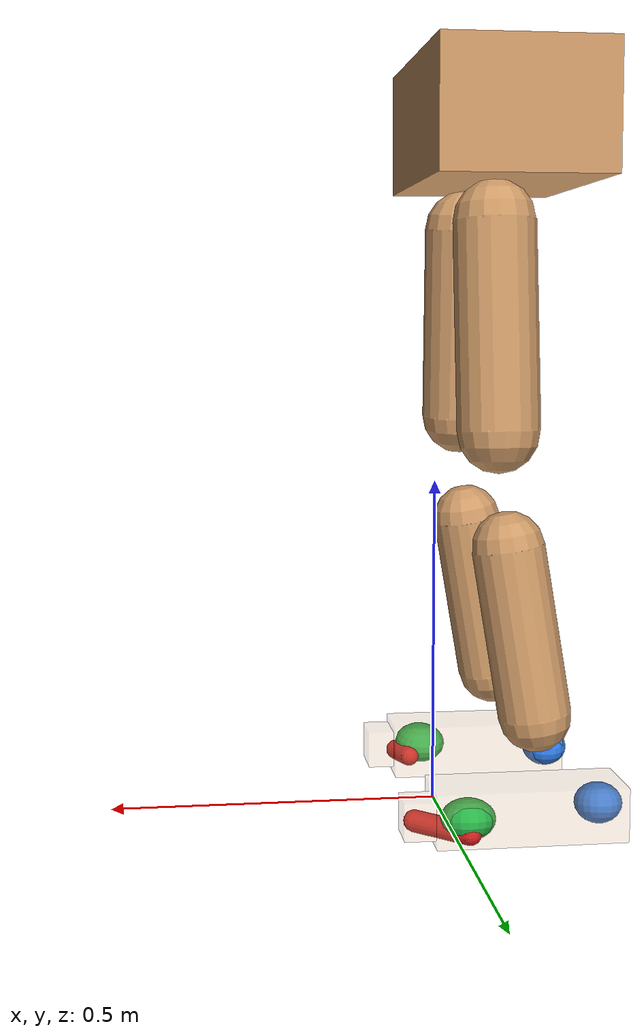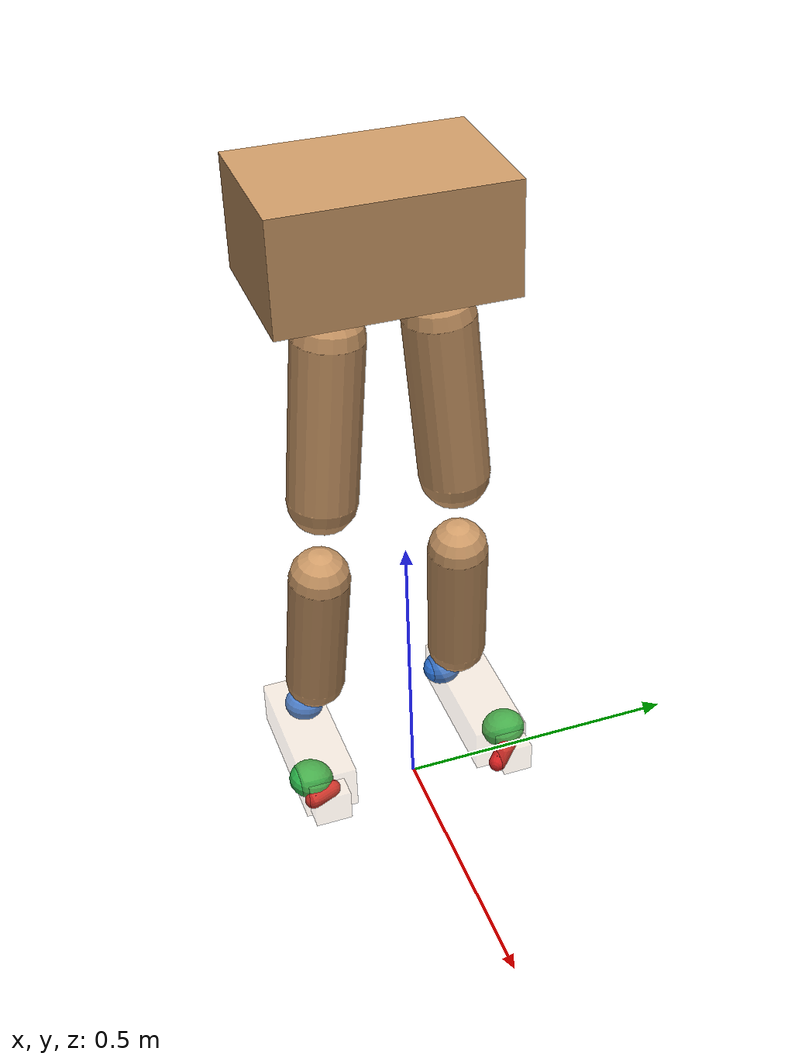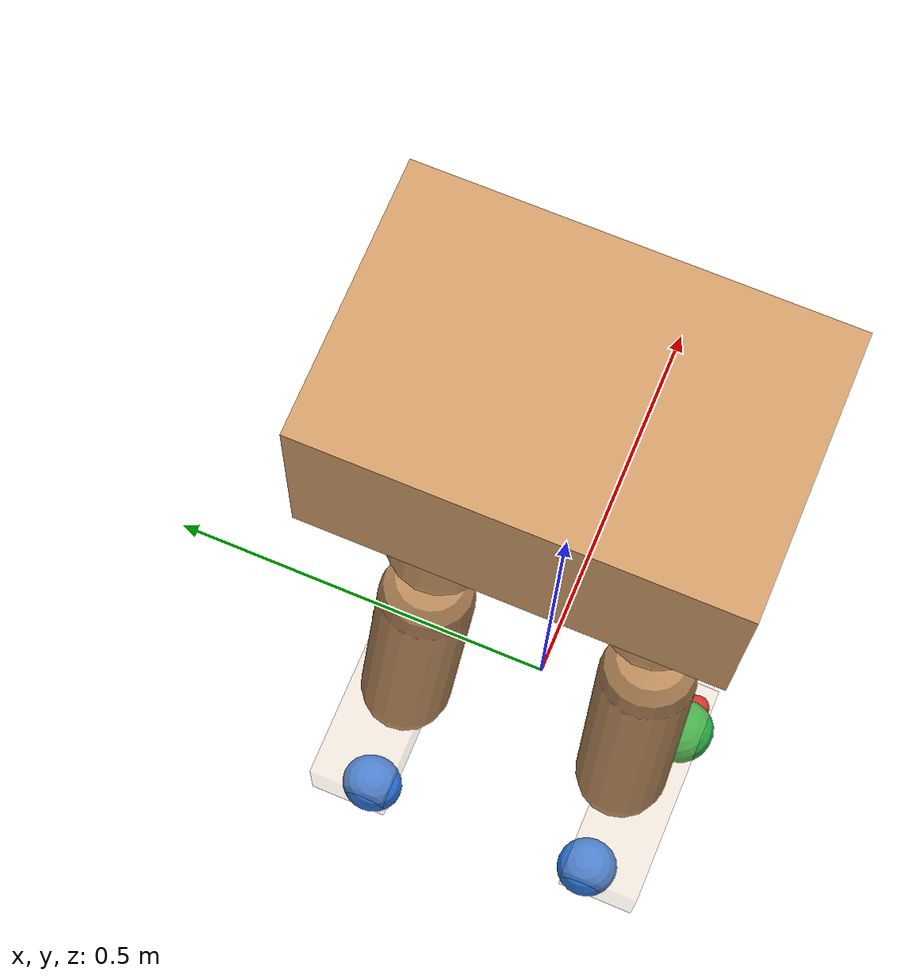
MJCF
<mujoco model="smpl_lower_humanoid_elipsoid_foot_contact_calibrated">
  <compiler angle="radian" coordinate="local" />
  <option timestep="0.001" integrator="implicitfast" solver="Newton" cone="elliptic" impratio="10" iterations="80" tolerance="1e-10" noslip_iterations="2">
    <flag nativeccd="enable" multiccd="enable" />
  </option>
  <default>
    <joint damping="0.12" armature="0.0005" />
    <geom solref="0.012 1" solimp="0.90 0.98 0.0015 0.5 2" margin="0.0005" />
    <default class="elipsoid_foot_contact">
      <geom type="ellipsoid" density="0" condim="6" contype="1" conaffinity="2" friction="1.0 0.03 0.002" rgba="0.10 0.45 0.85 0.88" />
    </default>
    <default class="elipsoid_touch_site">
      <site type="box" group="3" rgba="0.9 0.2 0.1 0.18" />
    </default>
  </default>
  <asset>
    <texture type="skybox" builtin="gradient" rgb1=".4 .5 .6" rgb2="0 0 0" width="100" height="100" />
    <texture builtin="flat" height="1278" mark="cross" markrgb="1 1 1" name="texgeom" random="0.01" rgb1="0.8 0.6 0.4" rgb2="0.8 0.6 0.4" type="cube" width="127" />
    <texture builtin="checker" height="100" name="texplane" rgb1="0 0 0" rgb2="0.8 0.8 0.8" type="2d" width="100" />
    <material name="MatPlane" reflectance="0.5" shininess="1" specular="1" texrepeat="60 60" texture="texplane" />
    <material name="geom" texture="texgeom" texuniform="true" />
  </asset>
  <worldbody>
    <light cutoff="100" diffuse="1 1 1" dir="-0 0 -1.3" directional="true" exponent="1" pos="0 0 1.3" specular=".1 .1 .1" />
    <body name="Pelvis" pos="0.00000 0.00000 1.04061">
      <geom type="box" pos="-0.09544 -0.00421 0.00624" size="0.12975 0.19747 0.09547" quat="1.0000 0.0000 0.0000 0.0000" density="1000" conaffinity="1" condim="3" contype="7" margin="0.001" rgba="0.8 0.6 .4 1" />
      <body name="L_Hip" pos="-0.06744 0.08281 -0.05030">
        <joint name="L_Hip_x" type="hinge" pos="0 0 0" axis="1 0 0" stiffness="800" damping="80" armature="0.02" range="-180.0000 180.0000" limited="true" />
        <joint name="L_Hip_y" type="hinge" pos="0 0 0" axis="0 1 0" stiffness="800" damping="80" armature="0.02" range="-180.0000 180.0000" limited="true" />
        <joint name="L_Hip_z" type="hinge" pos="0 0 0" axis="0 0 1" stiffness="800" damping="80" armature="0.02" range="-180.0000 180.0000" limited="true" />
        <geom type="capsule" contype="1" conaffinity="1" density="2040.816327" fromto="-0.00119 0.00763 -0.09899 -0.00487 0.03129 -0.40587" size="0.0615" condim="3" margin="0.001" rgba="0.8 0.6 .4 1" />
        <body name="L_Knee" pos="-0.00593 0.03816 -0.49497">
          <joint name="L_Knee_x" type="hinge" pos="0 0 0" axis="1 0 0" stiffness="800" damping="80" armature="0.02" range="-180.0000 180.0000" limited="true" />
          <joint name="L_Knee_y" type="hinge" pos="0 0 0" axis="0 1 0" stiffness="800" damping="80" armature="0.02" range="-180.0000 180.0000" limited="true" />
          <joint name="L_Knee_z" type="hinge" pos="0 0 0" axis="0 0 1" stiffness="800" damping="80" armature="0.02" range="-180.0000 180.0000" limited="true" />
          <geom type="capsule" contype="1" conaffinity="1" density="1234.567901" fromto="-0.01302 0.00290 -0.08045 -0.05338 0.01189 -0.32986" size="0.0541" condim="3" margin="0.001" rgba="0.8 0.6 .4 1" />
          <body name="L_Ankle" pos="-0.06509 0.01450 -0.40227">
            <joint name="L_Ankle_x" type="hinge" pos="0 0 0" axis="1 0 0" stiffness="800" damping="80" armature="0.02" range="-180.0000 180.0000" limited="true" />
            <joint name="L_Ankle_y" type="hinge" pos="0 0 0" axis="0 1 0" stiffness="800" damping="80" armature="0.02" range="-180.0000 180.0000" limited="true" />
            <joint name="L_Ankle_z" type="hinge" pos="0 0 0" axis="0 0 1" stiffness="800" damping="80" armature="0.02" range="-180.0000 180.0000" limited="true" />
            <geom name="L_foot_inertial_visual" type="box" pos="0.03050 0.02543 -0.05936" size="0.14119 0.04827 0.03983" quat="1.0000 0.0000 0.0000 0.0000" density="1000" conaffinity="0" condim="3" contype="0" margin="0.001" rgba="0.8 0.6 .4 0.18" />
            <body name="L_elipsoid_foot_segment" pos="0.00000 0.00000 0.00000">
              <inertial pos="0.00000 -0.01000 0.02800" mass="0.55" diaginertia="0.0012 0.0026 0.0021" />
              <geom name="L_heel_ellipsoid" class="elipsoid_foot_contact" pos="-0.08568 0.00216 -0.06307" quat="0.70512 0.05298 0.05298 -0.70512" size="0.0375 0.0355 0.0300" rgba="0.18 0.48 0.90 0.90" />
              <geom name="L_ball_ellipsoid" class="elipsoid_foot_contact" pos="0.12211 0.04870 -0.06307" quat="0.85577 0.08586 0.05093 -0.50763" size="0.0400 0.0410 0.0300" rgba="0.16 0.70 0.28 0.90" />
              <site name="L_heel_touch" class="elipsoid_touch_site" pos="-0.08568 0.00216 -0.08907" size="0.0563 0.0461 0.0040" />
              <site name="L_ball_touch" class="elipsoid_touch_site" pos="0.12211 0.04870 -0.08907" size="0.0560 0.0644 0.0040" />
              <body name="L_elipsoid_toe_segment" pos="0.12211 0.04870 -0.06919">
                <joint name="L_toe_hinge" type="hinge" axis="0 -1 0" range="-0.8 0.7" limited="true" damping="0.18" armature="0.0004" />
                <inertial pos="0.05000 0.00000 0.00200" mass="0.12" diaginertia="0.00018 0.00045 0.00038" />
                <geom name="L_toe_capsule" class="elipsoid_foot_contact" type="capsule" fromto="0.00094 0.02361 -0.00788 0.07157 -0.03918 -0.00788" size="0.0160" rgba="0.82 0.12 0.12 0.90" />
                <site name="L_toe_touch" class="elipsoid_touch_site" pos="0.03561 -0.00764 -0.01988" size="0.0350 0.0350 0.0040" />
              </body>
            </body>
            <body name="L_Toe" pos="0.12211 0.04870 -0.06919">
              <joint name="L_Toe_x" type="hinge" pos="0 0 0" axis="1 0 0" stiffness="500" damping="50" armature="0.02" range="-180.0000 180.0000" limited="true" />
              <joint name="L_Toe_y" type="hinge" pos="0 0 0" axis="0 1 0" stiffness="500" damping="50" armature="0.02" range="-180.0000 180.0000" limited="true" />
              <joint name="L_Toe_z" type="hinge" pos="0 0 0" axis="0 0 1" stiffness="500" damping="50" armature="0.02" range="-180.0000 180.0000" limited="true" />
              <geom name="L_toe_inertial_visual" type="box" pos="0.04031 -0.00865 0.00958" size="0.05531 0.02665 0.02758" quat="1.0000 0.0000 0.0000 0.0000" density="1000" conaffinity="0" condim="3" contype="0" margin="0.001" rgba="0.8 0.6 .4 0.12" />
            </body>
          </body>
        </body>
      </body>
      <body name="R_Hip" pos="-0.06123 -0.08511 -0.05424">
        <joint name="R_Hip_x" type="hinge" pos="0 0 0" axis="1 0 0" stiffness="800" damping="80" armature="0.02" range="-180.0000 180.0000" limited="true" />
        <joint name="R_Hip_y" type="hinge" pos="0 0 0" axis="0 1 0" stiffness="800" damping="80" armature="0.02" range="-180.0000 180.0000" limited="true" />
        <joint name="R_Hip_z" type="hinge" pos="0 0 0" axis="0 0 1" stiffness="800" damping="80" armature="0.02" range="-180.0000 180.0000" limited="true" />
        <geom type="capsule" contype="1" conaffinity="1" density="2040.816327" fromto="-0.00068 -0.00850 -0.09596 -0.00281 -0.03485 -0.39342" size="0.0606" condim="3" margin="0.001" rgba="0.8 0.6 .4 1" />
        <body name="R_Knee" pos="-0.00342 -0.04250 -0.47978">
          <joint name="R_Knee_x" type="hinge" pos="0 0 0" axis="1 0 0" stiffness="800" damping="80" armature="0.02" range="-180.0000 180.0000" limited="true" />
          <joint name="R_Knee_y" type="hinge" pos="0 0 0" axis="0 1 0" stiffness="800" damping="80" armature="0.02" range="-180.0000 180.0000" limited="true" />
          <joint name="R_Knee_z" type="hinge" pos="0 0 0" axis="0 0 1" stiffness="800" damping="80" armature="0.02" range="-180.0000 180.0000" limited="true" />
          <geom type="capsule" contype="1" conaffinity="1" density="1234.567901" fromto="-0.01482 -0.00343 -0.08303 -0.06076 -0.01406 -0.34043" size="0.0541" condim="3" margin="0.001" rgba="0.8 0.6 .4 1" />
          <body name="R_Ankle" pos="-0.07409 -0.01714 -0.41516">
            <joint name="R_Ankle_x" type="hinge" pos="0 0 0" axis="1 0 0" stiffness="800" damping="80" armature="0.02" range="-180.0000 180.0000" limited="true" />
            <joint name="R_Ankle_y" type="hinge" pos="0 0 0" axis="0 1 0" stiffness="800" damping="80" armature="0.02" range="-180.0000 180.0000" limited="true" />
            <joint name="R_Ankle_z" type="hinge" pos="0 0 0" axis="0 0 1" stiffness="800" damping="80" armature="0.02" range="-180.0000 180.0000" limited="true" />
            <geom name="R_foot_inertial_visual" type="box" pos="0.03642 -0.02333 -0.05833" size="0.14117 0.04772 0.04090" quat="1.0000 0.0000 0.0000 0.0000" density="1000" conaffinity="0" condim="3" contype="0" margin="0.001" rgba="0.8 0.6 .4 0.18" />
            <body name="R_elipsoid_foot_segment" pos="0.00000 0.00000 0.00000">
              <inertial pos="0.00000 0.01000 0.02800" mass="0.55" diaginertia="0.0012 0.0026 0.0021" />
              <geom name="R_heel_ellipsoid" class="elipsoid_foot_contact" pos="-0.07975 -0.00061 -0.06143" quat="0.70512 -0.05298 0.05298 0.70512" size="0.0370 0.0365 0.0300" rgba="0.18 0.48 0.90 0.90" />
              <geom name="R_ball_ellipsoid" class="elipsoid_foot_contact" pos="0.12492 -0.04604 -0.06143" quat="0.85577 -0.08586 0.05093 0.50763" size="0.0400 0.0414 0.0300" rgba="0.16 0.70 0.28 0.90" />
              <site name="R_heel_touch" class="elipsoid_touch_site" pos="-0.07975 -0.00061 -0.08743" size="0.0555 0.0475 0.0040" />
              <site name="R_ball_touch" class="elipsoid_touch_site" pos="0.12492 -0.04604 -0.08743" size="0.0560 0.0650 0.0040" />
              <body name="R_elipsoid_toe_segment" pos="0.12492 -0.04604 -0.06923">
                <joint name="R_toe_hinge" type="hinge" axis="0 1 0" range="-0.8 0.7" limited="true" damping="0.18" armature="0.0004" />
                <inertial pos="0.05000 0.00000 0.00200" mass="0.12" diaginertia="0.00018 0.00045 0.00038" />
                <geom name="R_toe_capsule" class="elipsoid_foot_contact" type="capsule" fromto="0.02319 0.03089 -0.00620 0.03981 -0.00755 -0.00620" size="0.0160" rgba="0.82 0.12 0.12 0.90" />
                <site name="R_toe_touch" class="elipsoid_touch_site" pos="0.03094 0.01146 -0.01820" size="0.0350 0.0350 0.0040" />
              </body>
            </body>
            <body name="R_Toe" pos="0.12492 -0.04604 -0.06923">
              <joint name="R_Toe_x" type="hinge" pos="0 0 0" axis="1 0 0" stiffness="500" damping="50" armature="0.02" range="-180.0000 180.0000" limited="true" />
              <joint name="R_Toe_y" type="hinge" pos="0 0 0" axis="0 1 0" stiffness="500" damping="50" armature="0.02" range="-180.0000 180.0000" limited="true" />
              <joint name="R_Toe_z" type="hinge" pos="0 0 0" axis="0 0 1" stiffness="500" damping="50" armature="0.02" range="-180.0000 180.0000" limited="true" />
              <geom name="R_toe_inertial_visual" type="box" pos="0.03937 0.01458 0.01090" size="0.05437 0.03258 0.02890" quat="1.0000 0.0000 0.0000 0.0000" density="1000" conaffinity="0" condim="3" contype="0" margin="0.001" rgba="0.8 0.6 .4 0.12" />
            </body>
          </body>
        </body>
      </body>
      <joint type="free" name="Pelvis" limited="false" actuatorfrclimited="false" />
    </body>
  </worldbody>
  <actuator>
    <motor name="L_Hip_x" joint="L_Hip_x" gear="500" />
    <motor name="L_Hip_y" joint="L_Hip_y" gear="500" />
    <motor name="L_Hip_z" joint="L_Hip_z" gear="500" />
    <motor name="L_Knee_x" joint="L_Knee_x" gear="500" />
    <motor name="L_Knee_y" joint="L_Knee_y" gear="500" />
    <motor name="L_Knee_z" joint="L_Knee_z" gear="500" />
    <motor name="L_Ankle_x" joint="L_Ankle_x" gear="500" />
    <motor name="L_Ankle_y" joint="L_Ankle_y" gear="500" />
    <motor name="L_Ankle_z" joint="L_Ankle_z" gear="500" />
    <motor name="L_Toe_x" joint="L_Toe_x" gear="500" />
    <motor name="L_Toe_y" joint="L_Toe_y" gear="500" />
    <motor name="L_Toe_z" joint="L_Toe_z" gear="500" />
    <motor name="R_Hip_x" joint="R_Hip_x" gear="500" />
    <motor name="R_Hip_y" joint="R_Hip_y" gear="500" />
    <motor name="R_Hip_z" joint="R_Hip_z" gear="500" />
    <motor name="R_Knee_x" joint="R_Knee_x" gear="500" />
    <motor name="R_Knee_y" joint="R_Knee_y" gear="500" />
    <motor name="R_Knee_z" joint="R_Knee_z" gear="500" />
    <motor name="R_Ankle_x" joint="R_Ankle_x" gear="500" />
    <motor name="R_Ankle_y" joint="R_Ankle_y" gear="500" />
    <motor name="R_Ankle_z" joint="R_Ankle_z" gear="500" />
    <motor name="R_Toe_x" joint="R_Toe_x" gear="500" />
    <motor name="R_Toe_y" joint="R_Toe_y" gear="500" />
    <motor name="R_Toe_z" joint="R_Toe_z" gear="500" />
  </actuator>
  <contact>
    <exclude body1="R_Knee" body2="R_Toe" />
    <exclude body1="R_Knee" body2="L_Ankle" />
    <exclude body1="R_Knee" body2="L_Toe" />
    <exclude body1="L_Knee" body2="L_Toe" />
    <exclude body1="L_Knee" body2="R_Ankle" />
    <exclude body1="L_Knee" body2="R_Toe" />
  </contact>
  <sensor>
    <touch name="L_heel_force" site="L_heel_touch" />
    <touch name="L_ball_force" site="L_ball_touch" />
    <touch name="L_toe_force" site="L_toe_touch" />
    <touch name="R_heel_force" site="R_heel_touch" />
    <touch name="R_ball_force" site="R_ball_touch" />
    <touch name="R_toe_force" site="R_toe_touch" />
  </sensor>
  <size njmax="700" nconmax="700" />
</mujoco>
